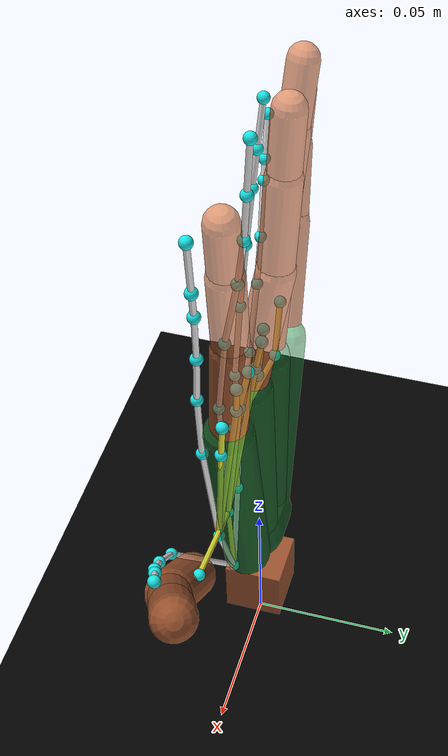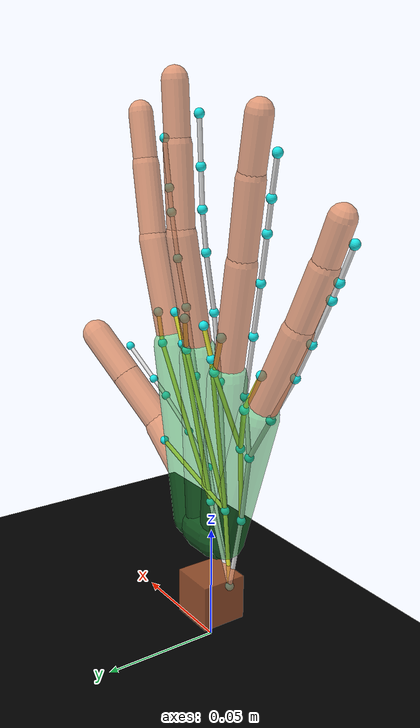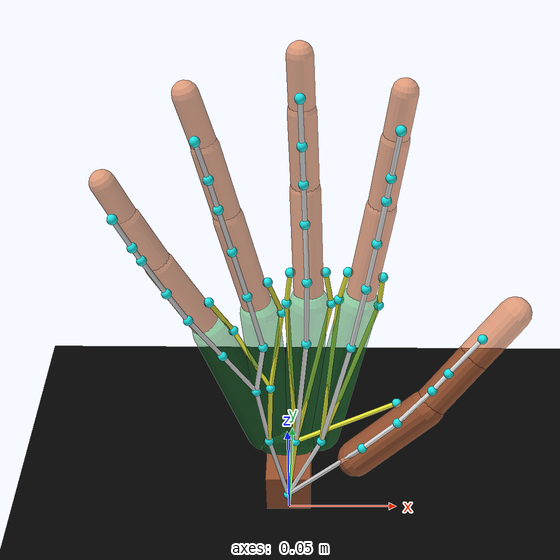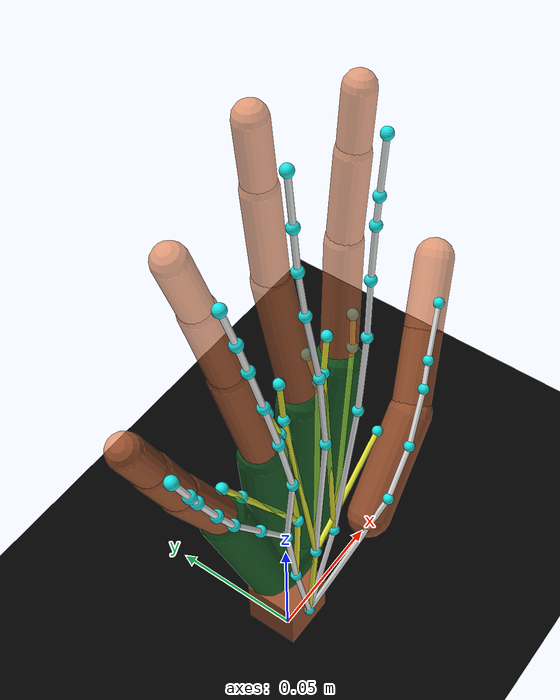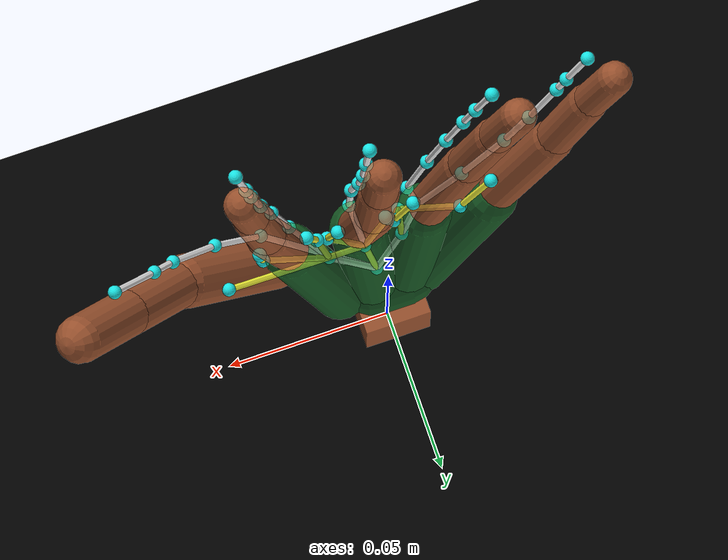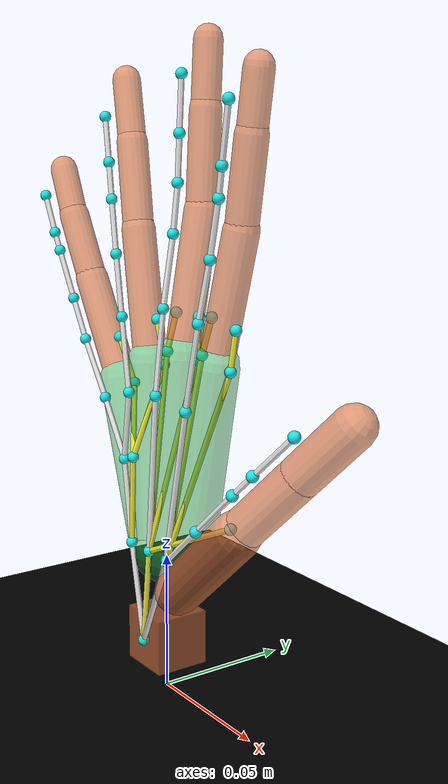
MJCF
<mujoco model="hand">
    <compiler eulerseq="xzy"/>

    <default>
        <geom rgba="0.9 0.5 0.3 0.7"/>
        <site type="sphere" rgba=".1 .9 .9 1" size="0.002"/>
    </default>

    <option gravity="0 0 0"/>

    <worldbody>
        <light diffuse=".5 .5 .5" pos="0 0 3" dir="0 0 -1"/>
        <geom type="plane" size="1 1 0.1" rgba="0 0 0 1"/>

        <body name="box" pos="0 0 0.02">
            <geom type="box" size="0.01 0.01 0.01"/>
            <site name="s0" pos="0 -0.01 0"/>
        </body>

        <body name="wrist" pos="0 0 0.05">
            <geom name="w" type="capsule" fromto="-0.005 0 0 0.005 0 0" size="0.01" rgba="0.2 .7 0.3 0.5"/>
            <geom name="i1" type="capsule" fromto="0.015 0 0 0.03 0 0.075" size="0.008" rgba="0.2 .7 0.3 0.5"/>
            <geom name="m1" type="capsule" fromto="0.005 0 0 0.01 0 0.075" size="0.008" rgba="0.2 .7 0.3 0.5"/>
            <geom name="r1" type="capsule" fromto="-0.005 0 0 -0.01 0 0.07" size="0.008" rgba="0.2 .7 0.3 0.5"/>
            <geom name="p1" type="capsule" fromto="-0.01 0 0 -0.03 0 0.06" size="0.008" rgba="0.2 .7 0.3 0.5"/>

            <site name="ms1" pos="0.004 -0.01 0.005"/>
            <site name="ms2" pos="0.009 -0.01 0.062"/>
            <site name="ms10" pos="0.001 0 0.075"/>
            <site name="ms11" pos="0.019 0 0.075"/>

            <site name="is1" pos="0.015 -0.01 0.005"/>
            <site name="is2" pos="0.027 -0.01 0.06"/>
            <site name="is10" pos="0.022 0 0.077"/>
            <site name="is11" pos="0.038 0 0.074"/>

            <site name="rps1" pos="-0.0075 -0.01 0.005"/>
            <site name="rps2" pos="-0.012 -0.01 0.035"/>
            <site name="rps3" pos="-0.006 -0.01 0.037"/>
            <site name="rs2" pos="-0.0084 -0.01 0.06"/>
            <site name="ps2" pos="-0.025 -0.01 0.055"/>
            <site name="rs9" pos="-0.001 0 0.07"/>
            <site name="ps9" pos="-0.021 0 0.06"/>

            <body name="thumb_meta" pos="0.03 -0.015 0" euler="30.8542 30.3947 56.2667">
                <geom type="capsule" fromto="0 0 0 0 0 0.04" size="0.008"/>
                <joint name="thumb_aa" type="hinge" axis="0 1 0" limited="true" range="-40 40" springdamper="0.1 0.75"/>
                <joint name="thumb_fe_1" type="hinge" axis="1 0 0" limited="true" range="-40 30" springdamper="0.1 0.75"/>
                <site name="ts1" pos="-0.01 0 0.01"/>
                <site name="ts2" pos="-0.01 0 0.03"/>
                <site name="ts6" pos="0 0.009 0.03"/>

                <body name="thumb_prox" pos="0 0 0.04" euler="-11.8527 -2.3977 4.4833">
                    <geom type="capsule" fromto="0 0 0 0 0 0.03" size="0.007"/>
                    <joint name="thumb_fe_2" type="hinge" axis="0 1 0" limited="true" range="-90 0" springdamper="0.1 0.75"/>
                    <site name="ts3" pos="-0.01 0 0.01"/>
                    <site name="ts4" pos="-0.01 0 0.02"/>

                    <body name="thumb_dist" pos="0 0 0.03" euler="0 2.9994 0">
                        <geom type="capsule" fromto="0 0 0 0 0 0.025" size="0.007"/>
                        <joint name="thumb_fe_3" type="hinge" axis="0 1 0" limited="true" range="-90 20" springdamper="0.1 0.75"/>
                        <site name="ts5" pos="-0.01 0 0.01"/>
                    </body>
                </body>
            </body>

            <body name="index_prox" pos="0.03 0 0.075" euler="-5.3211 0.0509 9.7921">
                <geom type="capsule" fromto="0 0 0 0 0 0.045" size="0.006"/>
                <joint name="index_aa" type="hinge" axis="0 1 0" limited="true" range="-20 30" springdamper="0.1 0.75"/>
                <joint name="index_fe_1" type="hinge" axis="1 0 0" limited="true" range="-20 90" springdamper="0.1 0.75"/>

                <site name="is3" pos="0 -0.01 0.014"/>
                <site name="is4" pos="0 -0.01 0.035"/>
                <site name="is8" pos="-0.007 0 0.014"/>
                <site name="is9" pos="0.007 0 0.014"/>

                <body name="index_mid" pos="0 0 0.045" euler="4.1656 -0.0207 -1.8625">
                    <geom type="capsule" fromto="0 0 0 0 0 0.03" size="0.0055"/>
                    <joint name="index_fe_2" type="hinge" axis="1 0 0" limited="true" range="0 90" springdamper="0.1 0.75"/>

                    <site name="is5" pos="0 -0.01 0.01"/>
                    <site name="is6" pos="0 -0.01 0.02"/>

                    <body name="index_dist" pos="0 0 0.03">
                        <geom type="capsule" fromto="0 0 0 0 0 0.02" size="0.005"/>
                        <joint name="index_fe_3" type="hinge" axis="1 0 0" limited="true" range="0 90" springdamper="0.1 0.75"/>

                        <site name="is7" pos="0 -0.01 0.01"/>
                    </body>
                </body>
            </body>

            <body name="mid_prox" pos="0.01 0 0.075" euler="-10.3552 -1.0169 -1.3986">
                <geom type="capsule" fromto="0 0 0 0 0 0.05" size="0.006"/>
                <joint name="mid_aa" type="hinge" axis="0 1 0" limited="true" range="-30 30" springdamper="0.1 0.75"/>
                <joint name="mid_fe_1" type="hinge" axis="1 0 0" limited="true" range="-20 90" springdamper="0.1 0.75"/>
                <site name="ms3" pos="0 -0.01 0.015"/>
                <site name="ms4" pos="0 -0.01 0.04"/>
                <site name="ms8" pos="-0.007 0 0.014"/>
                <site name="ms9" pos="0.007 0 0.014"/>

                <body name="mid_mid" pos="0 0 0.05" euler="6.8031 -0.0003 -0.0065">
                    <geom type="capsule" fromto="0 0 0 0 0 0.033" size="0.0055"/>
                    <joint name="mid_fe_2" type="hinge" axis="1 0 0" limited="true" range="0 90" springdamper="0.1 0.75"/>
                    <site name="ms5" pos="0 -0.01 0.008"/>
                    <site name="ms6" pos="0 -0.01 0.024"/>

                    <body name="mid_dist" pos="0 0 0.033">
                        <geom type="capsule" fromto="0 0 0 0 0 0.022" size="0.005"/>
                        <joint name="mid_fe_3" type="hinge" axis="1 0 0" limited="true" range="0 90" springdamper="0.1 0.75"/>
                        <site name="ms7" pos="0 -0.01 0.01"/>
                    </body>
                </body>
            </body>

            <body name="ring_prox" pos="-0.01 0 0.07" euler="-2.2338 -1.1406 -12.8569">
                <geom type="capsule" fromto="0 0 0 0 0 0.047" size="0.006"/>
                <joint name="ring_aa" type="hinge" axis="0 1 0" limited="true" range="-30 30" springdamper="0.1 0.75"/>
                <joint name="ring_fe_1" type="hinge" axis="1 0 0" limited="true" range="-20 90" springdamper="0.1 0.75"/>
                <site name="rs3" pos="0 -0.01 0.016"/>
                <site name="rs4" pos="0 -0.01 0.038"/>
                <site name="rs8" pos="0.007 0 0.014"/>

                <body name="ring_mid" pos="0 0 0.047" euler="-1.2933 -0.0098 -0.1873">
                    <geom type="capsule" fromto="0 0 0 0 0 0.031" size="0.0055"/>
                    <joint name="ring_fe_2" type="hinge" axis="1 0 0" limited="true" range="0 90" springdamper="0.1 0.75"/>
                    <site name="rs5" pos="0 -0.01 0.01"/>
                    <site name="rs6" pos="0 -0.01 0.023"/>

                    <body name="ring_dist" pos="0 0 0.031" euler="-0.1681 -0.1287 -2.338">
                        <geom type="capsule" fromto="0 0 0 0 0 0.022" size="0.005"/>
                        <joint name="ring_fe_3" type="hinge" axis="1 0 0" limited="true" range="0 90" springdamper="0.1 0.75"/>
                        <site name="rs7" pos="0 -0.01 0.008"/>
                    </body>
                </body>
            </body>

            <body name="pinky_prox" pos="-0.03 0 0.06" euler="2.4076 0.7085 -26.7040">
                <geom type="capsule" fromto="0 0 0 0 0 0.04" size="0.006"/>
                <joint name="pinky_aa" type="hinge" axis="0 1 0" limited="true" range="-10 20" springdamper="0.1 0.75"/>
                <joint name="pinky_fe_1" type="hinge" axis="1 0 0" limited="true" range="-20 90" springdamper="0.1 0.75"/>
                <site name="ps3" pos="0 -0.01 0.017"/>
                <site name="ps4" pos="0 -0.01 0.033"/>
                <site name="ps8" pos="0.007 0 0.014"/>

                <body name="pinky_mid" pos="0 0 0.04" euler="1.0196 -0.2397 3.1869">
                    <geom type="capsule" fromto="0 0 0 0 0 0.025" size="0.0055"/>
                    <joint name="pinky_fe_2" type="hinge" axis="1 0 0" limited="true" range="0 90" springdamper="0.1 0.75"/>
                    <site name="ps5" pos="0 -0.01 0.012"/>
                    <site name="ps6" pos="0 -0.01 0.019"/>

                    <body name="pinky_dist" pos="0 0 0.025" euler="-3.2335 -0.0021 0.1339">
                        <geom type="capsule" fromto="0 0 0 0 0 0.018" size="0.005"/>
                        <joint name="pinky_fe_3" type="hinge" axis="1 0 0" limited="true" range="0 90" springdamper="0.1 0.75"/>
                        <site name="ps7" pos="0 -0.01 0.008"/>
                    </body>
                </body>
            </body>
        </body>
    </worldbody>

    <tendon>
        <spatial name="thumb_flex_dis" width="0.001" rgba=".9 0.9 0.9 1" limited="true" range="-0.05 0.33">
            <site site="ts5"/>
            <site site="ts4"/>
            <site site="ts3"/>
            <site site="ts2"/>
            <site site="ts1"/>
            <site site="s0"/>
        </spatial>

        <spatial name="thumb_opp" width="0.001" rgba=".9 0.9 0.2 1" limited="true" range="-0.05 0.33">
            <site site="ts6"/>
            <site site="ms1"/>
            <site site="s0"/>
        </spatial>

        <spatial name="index_flex_dis" width="0.001" rgba=".9 .9 .9 1" limited="true" range="-0.05 0.33">
            <site site="is7"/>
            <site site="is6"/>
            <site site="is5"/>
            <site site="is4"/>
            <site site="is3"/>
            <site site="is2"/>
            <site site="is1"/>
            <site site="s0"/>
        </spatial>

        <spatial name="index_flex_mid" width="0.001" rgba=".9 0 0 1" limited="true" range="-0.05 0.33">
            <site site="is5"/>
            <site site="is4"/>
            <site site="is3"/>
            <site site="is2"/>
            <site site="is1"/>
            <site site="s0"/>
        </spatial>

        <spatial name="index_L" width="0.001" rgba=".9 0.9 0.2 1" limited="true" range="-0.05 0.33">
            <site site="is9"/>
            <site site="is11"/>
            <site site="is1"/>
            <site site="s0"/>
        </spatial>

        <spatial name="index_R" width="0.001" rgba=".9 0.9 0.2 1" limited="true" range="-0.05 0.33">
            <site site="is8"/>
            <site site="is10"/>
            <site site="is1"/>
            <site site="s0"/>
        </spatial>

        <spatial name="mid_flex_dis" width="0.001" rgba=".9 .9 .9 1" limited="true" range="-0.05 0.33">
            <site site="ms7"/>
            <site site="ms6"/>
            <site site="ms5"/>
            <site site="ms4"/>
            <site site="ms3"/>
            <site site="ms2"/>
            <site site="ms1"/>
            <site site="s0"/>
        </spatial>

        <spatial name="mid_flex_mid" width="0.001" rgba=".9 0 0 1" limited="true" range="-0.05 0.33">
            <site site="ms5"/>
            <site site="ms4"/>
            <site site="ms3"/>
            <site site="ms2"/>
            <site site="ms1"/>
            <site site="s0"/>
        </spatial>

        <spatial name="mid_L" width="0.001" rgba=".9 0.9 0.2 1" limited="true" range="-0.05 0.33">
            <site site="ms9"/>
            <site site="ms11"/>
            <site site="ms1"/>
            <site site="s0"/>
        </spatial>

        <spatial name="mid_R" width="0.001" rgba=".9 0.9 0.2 1" limited="true" range="-0.05 0.33">
            <site site="ms8"/>
            <site site="ms10"/>
            <site site="ms1"/>
            <site site="s0"/>
        </spatial>

        <spatial name="rp_flex_dis" width="0.001" rgba=".9 .9 .9 1" limited="true" range="-0.05 0.33">
            <site site="s0"/>
            <site site="rps1"/>
            <site site="rps2"/>
            <pulley divisor="2"/>
            <site site="rps2"/>
            <site site="rs2"/>
            <site site="rs3"/>
            <site site="rs4"/>
            <site site="rs5"/>
            <site site="rs6"/>
            <site site="rs7"/>
            <pulley divisor="2"/>
            <site site="rps2"/>
            <site site="ps2"/>
            <site site="ps3"/>
            <site site="ps4"/>
            <site site="ps5"/>
            <site site="ps6"/>
            <site site="ps7"/>
        </spatial>

        <spatial name="rp_L" width="0.001" rgba=".9 .9 .2 1" limited="true" range="-0.05 0.33">
            <site site="s0"/>
            <site site="rps1"/>
            <site site="rps3"/>
            <pulley divisor="2"/>
            <site site="rps3"/>
            <site site="rs9"/>
            <site site="rs8"/>
            <pulley divisor="2"/>
            <site site="rps3"/>
            <site site="ps9"/>
            <site site="ps8"/>
        </spatial>
    </tendon>

     <actuator>
         <motor name='thumb_flex_dis' tendon='thumb_flex_dis' />
         <motor name='thumb_opp' tendon='thumb_opp' />
         <motor name='index_flex_dis' tendon='index_flex_dis' />
         <motor name='index_flex_mid' tendon='index_flex_mid' />
         <motor name='index_L' tendon='index_L' />
         <motor name='index_R' tendon='index_R' />
         <motor name='mid_flex_dis' tendon='mid_flex_dis' />
         <motor name='mid_flex_mid' tendon='mid_flex_mid' />
         <motor name='mid_L' tendon='mid_L' />
         <motor name='mid_R' tendon='mid_R' />
         <motor name='rp_flex_dis' tendon='rp_flex_dis' />
         <motor name='rp_L' tendon='rp_L' />
    </actuator>
</mujoco>
